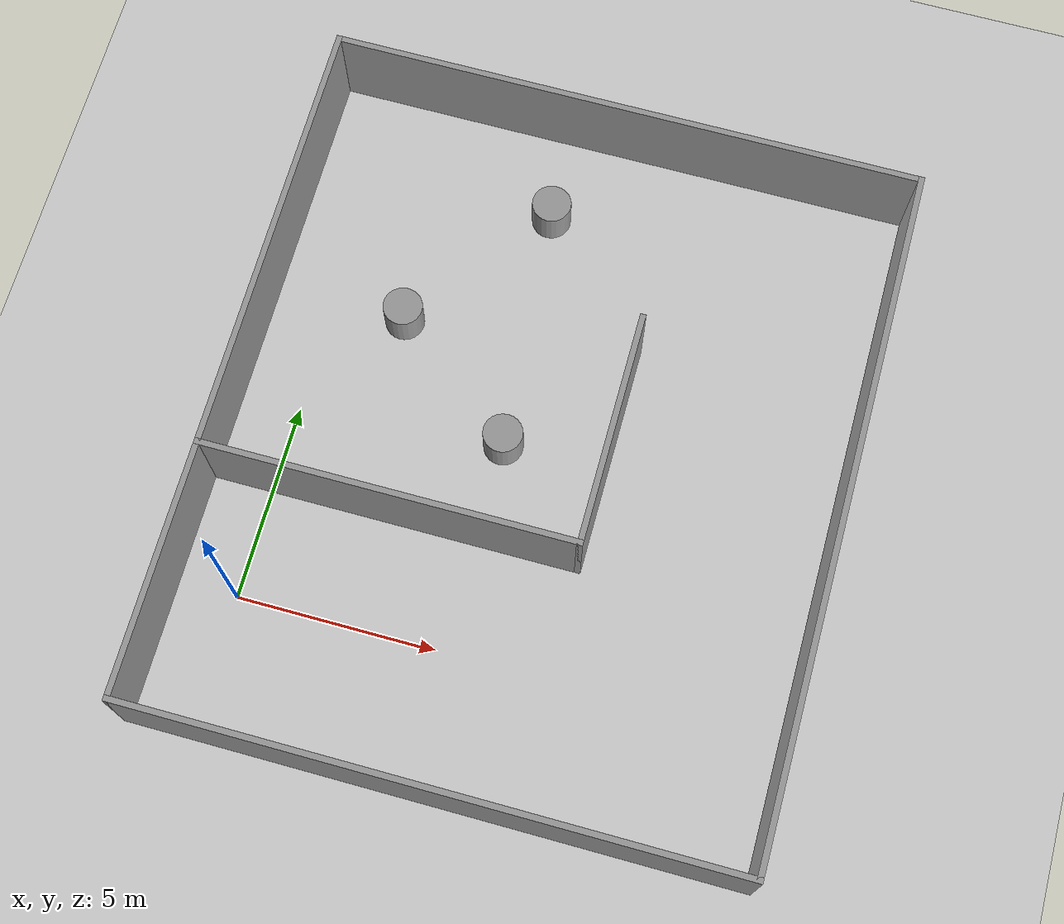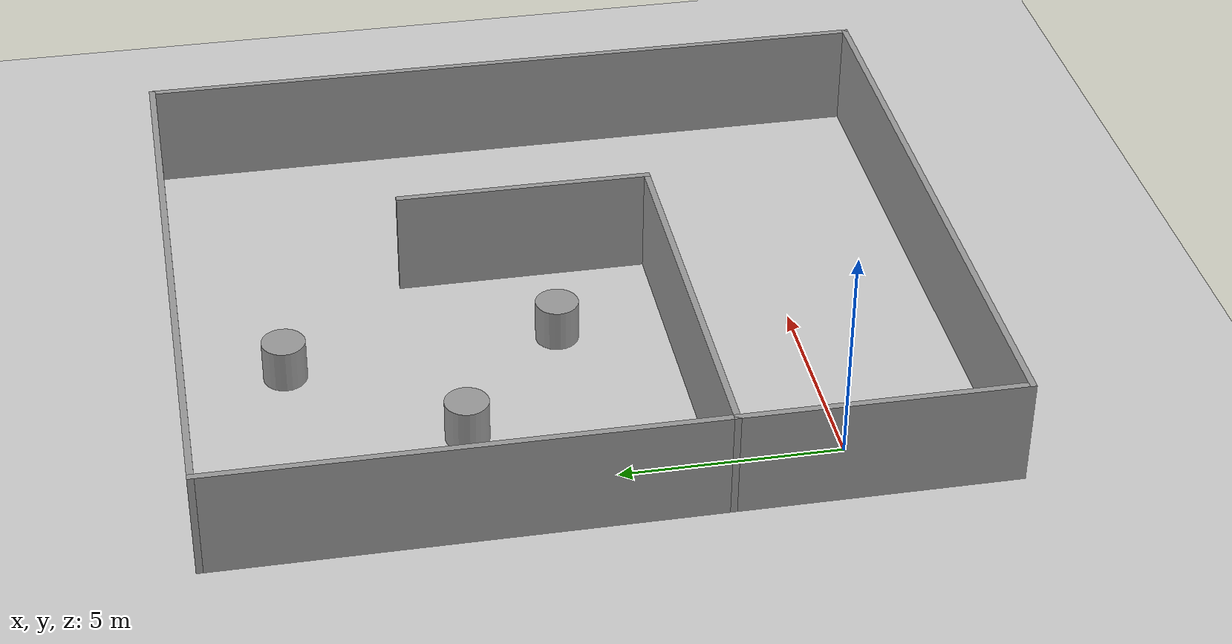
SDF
<sdf version="1.7">
 <world name="default">
  <light name="sun" type="directional">
   <pose>0 0 10 0 -0 0</pose>
   <diffuse>0.8 0.8 0.8 1</diffuse>
   <specular>0.2 0.2 0.2 1</specular>
   <attenuation>
    <range>1000</range>
    <constant>0.9</constant>
    <linear>0.01</linear>
    <quadratic>0.001</quadratic>
   </attenuation>
   <direction>-0.5 0.1 -0.9</direction>
   <spot><inner_angle>0</inner_angle><outer_angle>0</outer_angle><falloff>0</falloff></spot>
  </light>
  <model name="ground_plane">
   <static>1</static>
   <link name="link">
    <collision name="collision">
     <geometry><plane><normal>0 0 1</normal><size>100 100</size></plane></geometry>
     <surface>
      <contact><collide_bitmask>65535</collide_bitmask></contact>
      <friction><ode><mu>100</mu><mu2>50</mu2></ode></friction>
     </surface>
    </collision>
    <visual name="visual">
     <cast_shadows>0</cast_shadows>
     <geometry><plane><normal>0 0 1</normal><size>100 100</size></plane></geometry>
     <material>
      <script><uri>file://media/materials/scripts/gazebo.material</uri><name>Gazebo/Grey</name></script>
     </material>
    </visual>
   </link>
  </model>
  <gravity>0 0 -9.8</gravity>
  <magnetic_field>6e-06 2.3e-05 -4.2e-05</magnetic_field>
  <atmosphere type="adiabatic"/>
  <physics type="ode">
   <max_step_size>0.001</max_step_size>
   <real_time_factor>1</real_time_factor>
   <real_time_update_rate>1000</real_time_update_rate>
  </physics>
  <scene><ambient>0.4 0.4 0.4 1</ambient><background>0.7 0.7 0.7 1</background><shadows>1</shadows></scene>
  <audio><device>default</device></audio>
  <spherical_coordinates>
   <surface_model>EARTH_WGS84</surface_model>
   <latitude_deg>2.98858</latitude_deg>
   <longitude_deg>101.724</longitude_deg>
   <elevation>0</elevation>
   <heading_deg>0</heading_deg>
  </spherical_coordinates>
  <model name="test01">
   <pose>5.99252 5.29147 0 0 -0 0</pose>
   <link name="Wall_10">
    <collision name="Wall_10_Collision">
     <geometry><box><size>15.25 0.15 2.5</size></box></geometry>
     <pose>0 0 1.25 0 -0 0</pose>
    </collision>
    <visual name="Wall_10_Visual">
     <pose>0 0 1.25 0 -0 0</pose>
     <geometry><box><size>15.25 0.15 2.5</size></box></geometry>
     <material>
      <script><uri>file://media/materials/scripts/gazebo.material</uri><name>Gazebo/Grey</name></script>
      <ambient>1 1 1 1</ambient>
     </material>
     <meta><layer>0</layer></meta>
    </visual>
    <pose>0 -8.8 0 0 -0 0</pose>
   </link>
   <link name="Wall_12">
    <collision name="Wall_12_Collision">
     <geometry><box><size>9.5 0.15 2.5</size></box></geometry>
     <pose>0 0 1.25 0 -0 0</pose>
    </collision>
    <visual name="Wall_12_Visual">
     <pose>0 0 1.25 0 -0 0</pose>
     <geometry><box><size>9.5 0.15 2.5</size></box></geometry>
     <material>
      <script><uri>file://media/materials/scripts/gazebo.material</uri><name>Gazebo/Grey</name></script>
      <ambient>1 1 1 1</ambient>
     </material>
     <meta><layer>0</layer></meta>
    </visual>
    <pose>-2.875 -2.45 0 0 -0 0</pose>
   </link>
   <link name="Wall_13">
    <collision name="Wall_13_Collision">
     <geometry><box><size>6 0.15 2.5</size></box></geometry>
     <pose>0 0 1.25 0 -0 0</pose>
    </collision>
    <visual name="Wall_13_Visual">
     <pose>0 0 1.25 0 -0 0</pose>
     <geometry><box><size>6 0.15 2.5</size></box></geometry>
     <material>
      <script><uri>file://media/materials/scripts/gazebo.material</uri><name>Gazebo/Grey</name></script>
      <ambient>1 1 1 1</ambient>
     </material>
     <meta><layer>0</layer></meta>
    </visual>
    <pose>1.8 0.475 0 0 -0 1.5708</pose>
   </link>
   <link name="Wall_15">
    <collision name="Wall_15_Collision">
     <geometry><box><size>17.75 0.15 2.5</size></box></geometry>
     <pose>0 0 1.25 0 -0 0</pose>
    </collision>
    <visual name="Wall_15_Visual">
     <pose>0 0 1.25 0 -0 0</pose>
     <geometry><box><size>17.75 0.15 2.5</size></box></geometry>
     <material>
      <script><uri>file://media/materials/scripts/gazebo.material</uri><name>Gazebo/Grey</name></script>
      <ambient>1 1 1 1</ambient>
     </material>
     <meta><layer>0</layer></meta>
    </visual>
    <pose>7.55 0 0 0 -0 1.5708</pose>
   </link>
   <link name="Wall_16">
    <collision name="Wall_16_Collision">
     <geometry><box><size>15.25 0.15 2.5</size></box></geometry>
     <pose>0 0 1.25 0 -0 0</pose>
    </collision>
    <visual name="Wall_16_Visual">
     <pose>0 0 1.25 0 -0 0</pose>
     <geometry><box><size>15.25 0.15 2.5</size></box></geometry>
     <material>
      <script><uri>file://media/materials/scripts/gazebo.material</uri><name>Gazebo/Grey</name></script>
      <ambient>1 1 1 1</ambient>
     </material>
     <meta><layer>0</layer></meta>
    </visual>
    <pose>0 8.8 0 0 -0 3.14159</pose>
   </link>
   <link name="Wall_18">
    <collision name="Wall_18_Collision">
     <geometry><box><size>11.25 0.15 2.5</size></box></geometry>
     <pose>0 0 1.25 0 -0 0</pose>
    </collision>
    <visual name="Wall_18_Visual">
     <pose>0 0 1.25 0 -0 0</pose>
     <geometry><box><size>11.25 0.15 2.5</size></box></geometry>
     <material>
      <script><uri>file://media/materials/scripts/gazebo.material</uri><name>Gazebo/Grey</name></script>
      <ambient>1 1 1 1</ambient>
     </material>
     <meta><layer>0</layer></meta>
    </visual>
    <pose>-7.55 3.25 0 0 -0 -1.5708</pose>
   </link>
   <link name="Wall_7">
    <collision name="Wall_7_Collision">
     <geometry><box><size>6.5 0.15 2.5</size></box></geometry>
     <pose>0 0 1.25 0 -0 0</pose>
    </collision>
    <visual name="Wall_7_Visual">
     <pose>0 0 1.25 0 -0 0</pose>
     <geometry><box><size>6.5 0.15 2.5</size></box></geometry>
     <material>
      <script><uri>file://media/materials/scripts/gazebo.material</uri><name>Gazebo/Grey</name></script>
      <ambient>1 1 1 1</ambient>
     </material>
     <meta><layer>0</layer></meta>
    </visual>
    <pose>-7.55 -5.625 0 0 -0 -1.5708</pose>
   </link>
   <static>1</static>
  </model>
  <model name="unit_cylinder">
   <pose>4.70456 11.7486 0.499998 5e-06 4e-06 -3e-06</pose>
   <link name="link">
    <inertial>
     <mass>1</mass>
     <inertia><ixx>0.145833</ixx><ixy>0</ixy><ixz>0</ixz><iyy>0.145833</iyy><iyz>0</iyz><izz>0.125</izz></inertia>
    </inertial>
    <collision name="collision">
     <geometry><cylinder><radius>0.5</radius><length>1</length></cylinder></geometry>
    </collision>
    <visual name="visual">
     <geometry><cylinder><radius>0.5</radius><length>1</length></cylinder></geometry>
     <material>
      <script><name>Gazebo/Grey</name><uri>file://media/materials/scripts/gazebo.material</uri></script>
     </material>
    </visual>
   </link>
  </model>
  <model name="unit_cylinder_0">
   <pose>5.17588 5.44217 0.499993 -5e-06 -4e-06 -2e-06</pose>
   <link name="link">
    <inertial>
     <mass>1</mass>
     <inertia><ixx>0.145833</ixx><ixy>0</ixy><ixz>0</ixz><iyy>0.145833</iyy><iyz>0</iyz><izz>0.125</izz></inertia>
    </inertial>
    <collision name="collision">
     <geometry><cylinder><radius>0.5</radius><length>1</length></cylinder></geometry>
    </collision>
    <visual name="visual">
     <geometry><cylinder><radius>0.5</radius><length>1</length></cylinder></geometry>
     <material>
      <script><name>Gazebo/Grey</name><uri>file://media/materials/scripts/gazebo.material</uri></script>
     </material>
    </visual>
   </link>
  </model>
  <model name="unit_cylinder_1">
   <pose>1.84901 8.01723 0.499998 5e-06 5e-06 0</pose>
   <link name="link">
    <inertial>
     <mass>1</mass>
     <inertia><ixx>0.145833</ixx><ixy>0</ixy><ixz>0</ixz><iyy>0.145833</iyy><iyz>0</iyz><izz>0.125</izz></inertia>
    </inertial>
    <collision name="collision">
     <geometry><cylinder><radius>0.5</radius><length>1</length></cylinder></geometry>
    </collision>
    <visual name="visual">
     <geometry><cylinder><radius>0.5</radius><length>1</length></cylinder></geometry>
     <material>
      <script><name>Gazebo/Grey</name><uri>file://media/materials/scripts/gazebo.material</uri></script>
     </material>
    </visual>
   </link>
  </model>
 </world>
</sdf>
